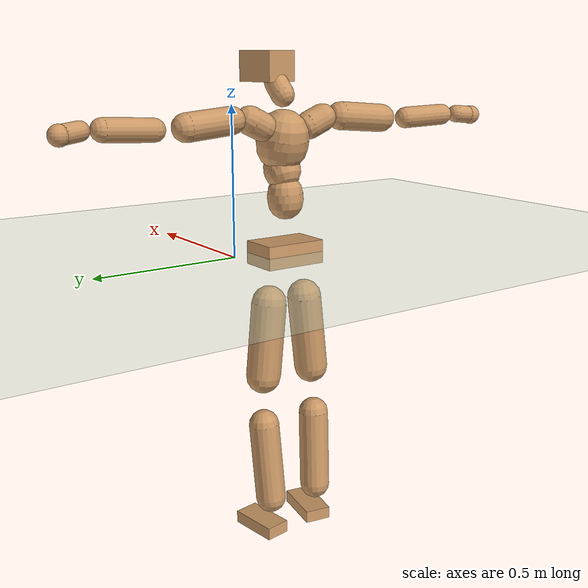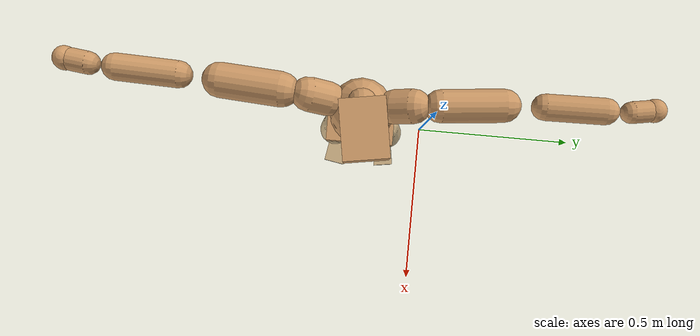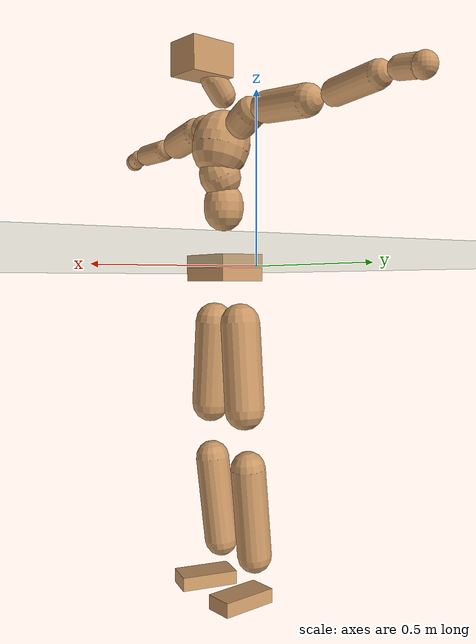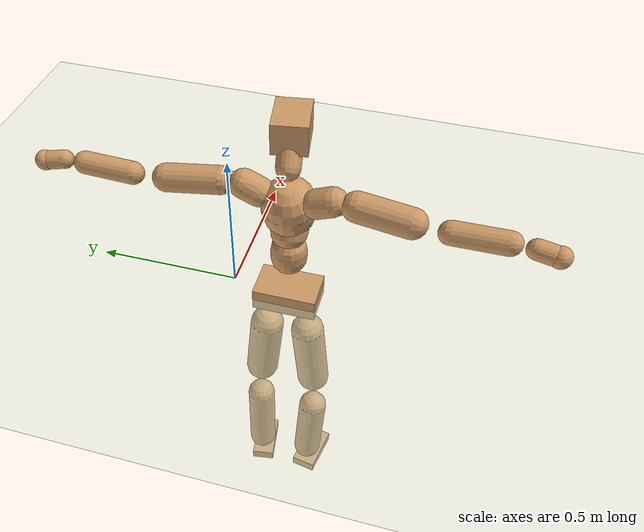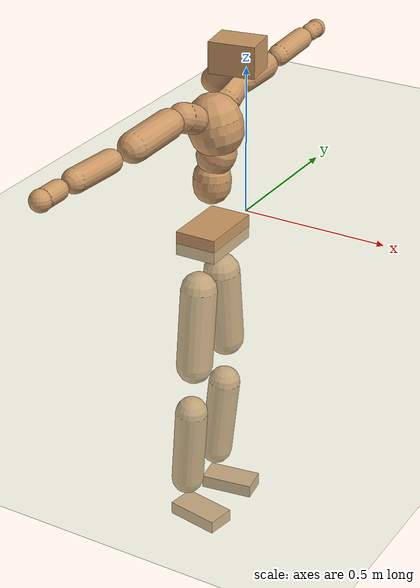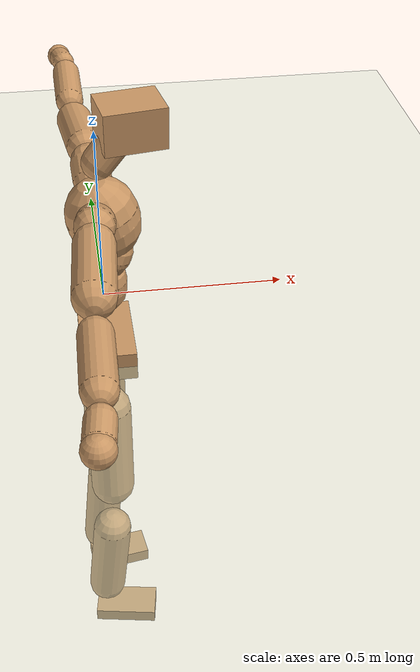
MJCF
<mujoco model="humanoid">
  <compiler coordinate="local" angle="radian"/>
  <default>
    <joint damping="0.0" armature="0.01" stiffness="0.0" limited="true"/>
    <geom conaffinity="1" condim="3" contype="7" margin="0.001" rgba="0.8 0.6 .4 1"/>
  </default>
  <asset>
    <texture type="skybox" builtin="gradient" rgb1=".4 .5 .6" rgb2="0 0 0" width="100" height="100"/>
    <texture builtin="flat" height="1278" mark="cross" markrgb="1 1 1" name="texgeom" random="0.01" rgb1="0.8 0.6 0.4" rgb2="0.8 0.6 0.4" type="cube" width="127"/>
    <texture builtin="checker" height="100" name="texplane" rgb1="0 0 0" rgb2="0.8 0.8 0.8" type="2d" width="100"/>
    <material name="MatPlane" reflectance="0.5" shininess="1" specular="1" texrepeat="60 60" texture="texplane"/>
    <material name="geom" texture="texgeom" texuniform="true"/>
  </asset>
  <worldbody>
    <light cutoff="100" diffuse="1 1 1" dir="-0 0 -1.3" directional="true" exponent="1" pos="0 0 1.3" specular=".1 .1 .1"/>
    <geom conaffinity="1" condim="3" name="floor" pos="0 0 0" rgba="0.8 0.9 0.8 1" size="100 100 .2" type="plane" material="MatPlane"/>
    <body name="Pelvis" pos="0.0006 -0.1985 0.0114">
      <freejoint name="Pelvis"/>
      <geom type="box" contype="1" conaffinity="1" density="500" pos="-0.0079 -0.0000 -0.0135" size="0.0696 0.1108 0.0404" quat="1.0000 0.0000 0.0000 0.0015" name="Pelvis"/>
      <body name="L_Hip" pos="-0.0211 0.0681 -0.0949">
        <joint name="L_Hip_x" type="hinge" pos="0 0 0" axis="1 0 0" stiffness="800" damping="80" armature="0.02" range="-180.0000 180.0000"/>
        <joint name="L_Hip_y" type="hinge" pos="0 0 0" axis="0 1 0" stiffness="800" damping="80" armature="0.02" range="-180.0000 180.0000"/>
        <joint name="L_Hip_z" type="hinge" pos="0 0 0" axis="0 0 1" stiffness="800" damping="80" armature="0.02" range="-180.0000 180.0000"/>
        <geom type="capsule" contype="1" conaffinity="1" density="500" fromto="0.0001 0.0086 -0.0879 0.0004 0.0344 -0.3518" size="0.0608" name="L_Hip"/>
        <body name="L_Knee" pos="0.0005 0.0429 -0.4397">
          <joint name="L_Knee_x" type="hinge" pos="0 0 0" axis="1 0 0" stiffness="800" damping="80" armature="0.02" range="-180.0000 180.0000"/>
          <joint name="L_Knee_y" type="hinge" pos="0 0 0" axis="0 1 0" stiffness="800" damping="80" armature="0.02" range="-180.0000 180.0000"/>
          <joint name="L_Knee_z" type="hinge" pos="0 0 0" axis="0 0 1" stiffness="800" damping="80" armature="0.02" range="-180.0000 180.0000"/>
          <geom type="capsule" contype="1" conaffinity="1" density="500" fromto="-0.0094 -0.0028 -0.0924 -0.0378 -0.0110 -0.3696" size="0.0539" name="L_Knee"/>
          <body name="L_Ankle" pos="-0.0472 -0.0138 -0.4619">
            <joint name="L_Ankle_x" type="hinge" pos="0 0 0" axis="1 0 0" stiffness="800" damping="80" armature="0.02" range="-180.0000 180.0000"/>
            <joint name="L_Ankle_y" type="hinge" pos="0 0 0" axis="0 1 0" stiffness="800" damping="80" armature="0.02" range="-180.0000 180.0000"/>
            <joint name="L_Ankle_z" type="hinge" pos="0 0 0" axis="0 0 1" stiffness="800" damping="80" armature="0.02" range="-180.0000 180.0000"/>
            <geom type="box" contype="1" conaffinity="1" density="500" pos="0.0633 0.0095 -0.0310" size="0.0892 0.0443 0.0223" quat="0.9972 0.0000 0.0000 0.0742" name="L_Ankle"/>
            <body name="L_Toe" pos="0.1266 0.019 -0.0621">
              <joint name="L_Toe_x" type="hinge" pos="0 0 0" axis="1 0 0" stiffness="500" damping="50" armature="0.02" range="-180.0000 180.0000"/>
              <joint name="L_Toe_y" type="hinge" pos="0 0 0" axis="0 1 0" stiffness="500" damping="50" armature="0.02" range="-180.0000 180.0000"/>
              <joint name="L_Toe_z" type="hinge" pos="0 0 0" axis="0 0 1" stiffness="500" damping="50" armature="0.02" range="-180.0000 180.0000"/>
              <geom type="box" contype="1" conaffinity="1" density="500" pos="0.0000 0.0000 0.0304" size="0.0009 0.0022 0.0011" quat="0.9967 0.0000 0.0000 0.0807" name="L_Toe"/>
            </body>
          </body>
        </body>
      </body>
      <body name="R_Hip" pos="-0.016 -0.0651 -0.093">
        <joint name="R_Hip_x" type="hinge" pos="0 0 0" axis="1 0 0" stiffness="800" damping="80" armature="0.02" range="-180.0000 180.0000"/>
        <joint name="R_Hip_y" type="hinge" pos="0 0 0" axis="0 1 0" stiffness="800" damping="80" armature="0.02" range="-180.0000 180.0000"/>
        <joint name="R_Hip_z" type="hinge" pos="0 0 0" axis="0 0 1" stiffness="800" damping="80" armature="0.02" range="-180.0000 180.0000"/>
        <geom type="capsule" contype="1" conaffinity="1" density="500" fromto="-0.0007 -0.0097 -0.0894 -0.0030 -0.0390 -0.3577" size="0.06" name="R_Hip"/>
        <body name="R_Knee" pos="-0.0037 -0.0487 -0.4471">
          <joint name="R_Knee_x" type="hinge" pos="0 0 0" axis="1 0 0" stiffness="800" damping="80" armature="0.02" range="-180.0000 180.0000"/>
          <joint name="R_Knee_y" type="hinge" pos="0 0 0" axis="0 1 0" stiffness="800" damping="80" armature="0.02" range="-180.0000 180.0000"/>
          <joint name="R_Knee_z" type="hinge" pos="0 0 0" axis="0 0 1" stiffness="800" damping="80" armature="0.02" range="-180.0000 180.0000"/>
          <geom type="capsule" contype="1" conaffinity="1" density="500" fromto="-0.0088 0.0037 -0.0921 -0.0353 0.0148 -0.3685" size="0.0542" name="R_Knee"/>
          <body name="R_Ankle" pos="-0.0442 0.0185 -0.4606">
            <joint name="R_Ankle_x" type="hinge" pos="0 0 0" axis="1 0 0" stiffness="800" damping="80" armature="0.02" range="-180.0000 180.0000"/>
            <joint name="R_Ankle_y" type="hinge" pos="0 0 0" axis="0 1 0" stiffness="800" damping="80" armature="0.02" range="-180.0000 180.0000"/>
            <joint name="R_Ankle_z" type="hinge" pos="0 0 0" axis="0 0 1" stiffness="800" damping="80" armature="0.02" range="-180.0000 180.0000"/>
            <geom type="box" contype="1" conaffinity="1" density="500" pos="0.0649 -0.0114 -0.0265" size="0.0911 0.0474 0.0219" quat="0.9963 0.0000 0.0000 -0.0864" name="R_Ankle"/>
            <body name="R_Toe" pos="0.1299 -0.0227 -0.053">
              <joint name="R_Toe_x" type="hinge" pos="0 0 0" axis="1 0 0" stiffness="500" damping="50" armature="0.02" range="-180.0000 180.0000"/>
              <joint name="R_Toe_y" type="hinge" pos="0 0 0" axis="0 1 0" stiffness="500" damping="50" armature="0.02" range="-180.0000 180.0000"/>
              <joint name="R_Toe_z" type="hinge" pos="0 0 0" axis="0 0 1" stiffness="500" damping="50" armature="0.02" range="-180.0000 180.0000"/>
              <geom type="box" contype="1" conaffinity="1" density="500" pos="0.0000 0.0000 0.0288" size="0.0008 0.0023 0.0012" quat="0.9970 0.0000 0.0000 -0.0778" name="R_Toe"/>
            </body>
          </body>
        </body>
      </body>
      <body name="Torso" pos="-0.0104 -0.0031 0.1068">
        <joint name="Torso_x" type="hinge" pos="0 0 0" axis="1 0 0" stiffness="1000" damping="100" armature="0.02" range="-180.0000 180.0000"/>
        <joint name="Torso_y" type="hinge" pos="0 0 0" axis="0 1 0" stiffness="1000" damping="100" armature="0.02" range="-180.0000 180.0000"/>
        <joint name="Torso_z" type="hinge" pos="0 0 0" axis="0 0 1" stiffness="1000" damping="100" armature="0.02" range="-180.0000 180.0000"/>
        <geom type="capsule" contype="1" conaffinity="1" density="500" fromto="0.0021 0.0020 0.0821 0.0014 0.0013 0.0547" size="0.0613" name="Torso"/>
        <body name="Spine" pos="0.0034 0.0034 0.1368">
          <joint name="Spine_x" type="hinge" pos="0 0 0" axis="1 0 0" stiffness="1000" damping="100" armature="0.02" range="-180.0000 180.0000"/>
          <joint name="Spine_y" type="hinge" pos="0 0 0" axis="0 1 0" stiffness="1000" damping="100" armature="0.02" range="-180.0000 180.0000"/>
          <joint name="Spine_z" type="hinge" pos="0 0 0" axis="0 0 1" stiffness="1000" damping="100" armature="0.02" range="-180.0000 180.0000"/>
          <geom type="capsule" contype="1" conaffinity="1" density="500" fromto="0.0157 0.0013 0.0299 0.0105 0.0009 0.0200" size="0.063" name="Spine"/>
          <body name="Chest" pos="0.0262 0.0022 0.0499">
            <joint name="Chest_x" type="hinge" pos="0 0 0" axis="1 0 0" stiffness="1000" damping="100" armature="0.02" range="-180.0000 180.0000"/>
            <joint name="Chest_y" type="hinge" pos="0 0 0" axis="0 1 0" stiffness="1000" damping="100" armature="0.02" range="-180.0000 180.0000"/>
            <joint name="Chest_z" type="hinge" pos="0 0 0" axis="0 0 1" stiffness="1000" damping="100" armature="0.02" range="-180.0000 180.0000"/>
            <geom type="capsule" contype="1" conaffinity="1" density="500" fromto="-0.0209 -0.0005 0.0864 -0.0139 -0.0003 0.0576" size="0.0888" name="Chest"/>
            <body name="Neck" pos="-0.034 -0.0009 0.2066">
              <joint name="Neck_x" type="hinge" pos="0 0 0" axis="1 0 0" stiffness="500" damping="50" armature="0.02" range="-180.0000 180.0000"/>
              <joint name="Neck_y" type="hinge" pos="0 0 0" axis="0 1 0" stiffness="500" damping="50" armature="0.02" range="-180.0000 180.0000"/>
              <joint name="Neck_z" type="hinge" pos="0 0 0" axis="0 0 1" stiffness="500" damping="50" armature="0.02" range="-180.0000 180.0000"/>
              <geom type="capsule" contype="1" conaffinity="1" density="500" fromto="0.0118 0.0016 0.0139 0.0471 0.0063 0.0555" size="0.0395" name="Neck"/>
              <body name="Head" pos="0.0589 0.0078 0.0693">
                <joint name="Head_x" type="hinge" pos="0 0 0" axis="1 0 0" stiffness="500" damping="50" armature="0.02" range="-180.0000 180.0000"/>
                <joint name="Head_y" type="hinge" pos="0 0 0" axis="0 1 0" stiffness="500" damping="50" armature="0.02" range="-180.0000 180.0000"/>
                <joint name="Head_z" type="hinge" pos="0 0 0" axis="0 0 1" stiffness="500" damping="50" armature="0.02" range="-180.0000 180.0000"/>
                <geom type="box" contype="1" conaffinity="1" density="500" pos="0.0305 0.0049 0.0357" size="0.0743 0.0568 0.0504" quat="0.9968 0.0000 0.0000 0.0799" name="Head"/>
              </body>
            </body>
            <body name="L_Thorax" pos="-0.0323 0.0737 0.1141">
              <joint name="L_Thorax_x" type="hinge" pos="0 0 0" axis="1 0 0" stiffness="500" damping="50" armature="0.02" range="-180.0000 180.0000"/>
              <joint name="L_Thorax_y" type="hinge" pos="0 0 0" axis="0 1 0" stiffness="500" damping="50" armature="0.02" range="-180.0000 180.0000"/>
              <joint name="L_Thorax_z" type="hinge" pos="0 0 0" axis="0 0 1" stiffness="500" damping="50" armature="0.02" range="-180.0000 180.0000"/>
              <geom type="capsule" contype="1" conaffinity="1" density="500" fromto="-0.0009 0.0161 0.0075 -0.0035 0.0643 0.0300" size="0.0477" name="L_Thorax"/>
              <body name="L_Shoulder" pos="-0.0043 0.0804 0.0374">
                <joint name="L_Shoulder_x" type="hinge" pos="0 0 0" axis="1 0 0" stiffness="500" damping="50" armature="0.02" range="-720.0000 720.0000"/>
                <joint name="L_Shoulder_y" type="hinge" pos="0 0 0" axis="0 1 0" stiffness="500" damping="50" armature="0.02" range="-720.0000 720.0000"/>
                <joint name="L_Shoulder_z" type="hinge" pos="0 0 0" axis="0 0 1" stiffness="500" damping="50" armature="0.02" range="-720.0000 720.0000"/>
                <geom type="capsule" contype="1" conaffinity="1" density="500" fromto="-0.0059 0.0571 -0.0044 -0.0234 0.2285 -0.0176" size="0.0457" name="L_Shoulder"/>
                <body name="L_Elbow" pos="-0.0293 0.2856 -0.022">
                  <joint name="L_Elbow_x" type="hinge" pos="0 0 0" axis="1 0 0" stiffness="500" damping="50" armature="0.02" range="-720.0000 720.0000"/>
                  <joint name="L_Elbow_y" type="hinge" pos="0 0 0" axis="0 1 0" stiffness="500" damping="50" armature="0.02" range="-720.0000 720.0000"/>
                  <joint name="L_Elbow_z" type="hinge" pos="0 0 0" axis="0 0 1" stiffness="500" damping="50" armature="0.02" range="-720.0000 720.0000"/>
                  <geom type="capsule" contype="1" conaffinity="1" density="500" fromto="-0.0004 0.0536 0.0027 -0.0018 0.2146 0.0107" size="0.0367" name="L_Elbow"/>
                  <body name="L_Wrist" pos="-0.0022 0.2682 0.0133">
                    <joint name="L_Wrist_x" type="hinge" pos="0 0 0" axis="1 0 0" stiffness="300" damping="30" armature="0.02" range="-180.0000 180.0000"/>
                    <joint name="L_Wrist_y" type="hinge" pos="0 0 0" axis="0 1 0" stiffness="300" damping="30" armature="0.02" range="-180.0000 180.0000"/>
                    <joint name="L_Wrist_z" type="hinge" pos="0 0 0" axis="0 0 1" stiffness="300" damping="30" armature="0.02" range="-180.0000 180.0000"/>
                    <geom type="capsule" contype="1" conaffinity="1" density="500" fromto="-0.0028 0.0162 -0.0020 -0.0112 0.0648 -0.0081" size="0.0299" name="L_Wrist"/>
                    <body name="L_Hand" pos="-0.014 0.081 -0.0101">
                      <joint name="L_Hand_x" type="hinge" pos="0 0 0" axis="1 0 0" stiffness="300" damping="30" armature="0.02" range="-180.0000 180.0000"/>
                      <joint name="L_Hand_y" type="hinge" pos="0 0 0" axis="0 1 0" stiffness="300" damping="30" armature="0.02" range="-180.0000 180.0000"/>
                      <joint name="L_Hand_z" type="hinge" pos="0 0 0" axis="0 0 1" stiffness="300" damping="30" armature="0.02" range="-180.0000 180.0000"/>
                      <geom type="sphere" contype="1" conaffinity="1" density="500" size="0.0324" pos="0.0000 0.0000 0.0000" name="L_Hand"/>
                    </body>
                  </body>
                </body>
              </body>
            </body>
            <body name="R_Thorax" pos="-0.0382 -0.0753 0.1112">
              <joint name="R_Thorax_x" type="hinge" pos="0 0 0" axis="1 0 0" stiffness="500" damping="50" armature="0.02" range="-180.0000 180.0000"/>
              <joint name="R_Thorax_y" type="hinge" pos="0 0 0" axis="0 1 0" stiffness="500" damping="50" armature="0.02" range="-180.0000 180.0000"/>
              <joint name="R_Thorax_z" type="hinge" pos="0 0 0" axis="0 0 1" stiffness="500" damping="50" armature="0.02" range="-180.0000 180.0000"/>
              <geom type="capsule" contype="1" conaffinity="1" density="500" fromto="-0.0015 -0.0174 0.0079 -0.0061 -0.0698 0.0317" size="0.0472" name="R_Thorax"/>
              <body name="R_Shoulder" pos="-0.0077 -0.0872 0.0397">
                <joint name="R_Shoulder_x" type="hinge" pos="0 0 0" axis="1 0 0" stiffness="500" damping="50" armature="0.02" range="-720.0000 720.0000"/>
                <joint name="R_Shoulder_y" type="hinge" pos="0 0 0" axis="0 1 0" stiffness="500" damping="50" armature="0.02" range="-720.0000 720.0000"/>
                <joint name="R_Shoulder_z" type="hinge" pos="0 0 0" axis="0 0 1" stiffness="500" damping="50" armature="0.02" range="-720.0000 720.0000"/>
                <geom type="capsule" contype="1" conaffinity="1" density="500" fromto="-0.0043 -0.0563 -0.0044 -0.0170 -0.2253 -0.0178" size="0.0484" name="R_Shoulder"/>
                <body name="R_Elbow" pos="-0.0213 -0.2816 -0.0222">
                  <joint name="R_Elbow_x" type="hinge" pos="0 0 0" axis="1 0 0" stiffness="500" damping="50" armature="0.02" range="-720.0000 720.0000"/>
                  <joint name="R_Elbow_y" type="hinge" pos="0 0 0" axis="0 1 0" stiffness="500" damping="50" armature="0.02" range="-720.0000 720.0000"/>
                  <joint name="R_Elbow_z" type="hinge" pos="0 0 0" axis="0 0 1" stiffness="500" damping="50" armature="0.02" range="-720.0000 720.0000"/>
                  <geom type="capsule" contype="1" conaffinity="1" density="500" fromto="-0.0016 -0.0566 0.0018 -0.0065 -0.2262 0.0071" size="0.0376" name="R_Elbow"/>
                  <body name="R_Wrist" pos="-0.0081 -0.2828 0.0089">
                    <joint name="R_Wrist_x" type="hinge" pos="0 0 0" axis="1 0 0" stiffness="300" damping="30" armature="0.02" range="-180.0000 180.0000"/>
                    <joint name="R_Wrist_y" type="hinge" pos="0 0 0" axis="0 1 0" stiffness="300" damping="30" armature="0.02" range="-180.0000 180.0000"/>
                    <joint name="R_Wrist_z" type="hinge" pos="0 0 0" axis="0 0 1" stiffness="300" damping="30" armature="0.02" range="-180.0000 180.0000"/>
                    <geom type="capsule" contype="1" conaffinity="1" density="500" fromto="-0.0022 -0.0169 -0.0015 -0.0088 -0.0676 -0.0061" size="0.0315" name="R_Wrist"/>
                    <body name="R_Hand" pos="-0.011 -0.0845 -0.0077">
                      <joint name="R_Hand_x" type="hinge" pos="0 0 0" axis="1 0 0" stiffness="300" damping="30" armature="0.02" range="-180.0000 180.0000"/>
                      <joint name="R_Hand_y" type="hinge" pos="0 0 0" axis="0 1 0" stiffness="300" damping="30" armature="0.02" range="-180.0000 180.0000"/>
                      <joint name="R_Hand_z" type="hinge" pos="0 0 0" axis="0 0 1" stiffness="300" damping="30" armature="0.02" range="-180.0000 180.0000"/>
                      <geom type="sphere" contype="1" conaffinity="1" density="500" size="0.0337" pos="0.0000 0.0000 0.0000" name="R_Hand"/>
                    </body>
                  </body>
                </body>
              </body>
            </body>
          </body>
        </body>
      </body>
    </body>
  </worldbody>
  <actuator>
    <motor name="L_Hip_x" joint="L_Hip_x" gear="500"/>
    <motor name="L_Hip_y" joint="L_Hip_y" gear="500"/>
    <motor name="L_Hip_z" joint="L_Hip_z" gear="500"/>
    <motor name="L_Knee_x" joint="L_Knee_x" gear="500"/>
    <motor name="L_Knee_y" joint="L_Knee_y" gear="500"/>
    <motor name="L_Knee_z" joint="L_Knee_z" gear="500"/>
    <motor name="L_Ankle_x" joint="L_Ankle_x" gear="500"/>
    <motor name="L_Ankle_y" joint="L_Ankle_y" gear="500"/>
    <motor name="L_Ankle_z" joint="L_Ankle_z" gear="500"/>
    <motor name="L_Toe_x" joint="L_Toe_x" gear="500"/>
    <motor name="L_Toe_y" joint="L_Toe_y" gear="500"/>
    <motor name="L_Toe_z" joint="L_Toe_z" gear="500"/>
    <motor name="R_Hip_x" joint="R_Hip_x" gear="500"/>
    <motor name="R_Hip_y" joint="R_Hip_y" gear="500"/>
    <motor name="R_Hip_z" joint="R_Hip_z" gear="500"/>
    <motor name="R_Knee_x" joint="R_Knee_x" gear="500"/>
    <motor name="R_Knee_y" joint="R_Knee_y" gear="500"/>
    <motor name="R_Knee_z" joint="R_Knee_z" gear="500"/>
    <motor name="R_Ankle_x" joint="R_Ankle_x" gear="500"/>
    <motor name="R_Ankle_y" joint="R_Ankle_y" gear="500"/>
    <motor name="R_Ankle_z" joint="R_Ankle_z" gear="500"/>
    <motor name="R_Toe_x" joint="R_Toe_x" gear="500"/>
    <motor name="R_Toe_y" joint="R_Toe_y" gear="500"/>
    <motor name="R_Toe_z" joint="R_Toe_z" gear="500"/>
    <motor name="Torso_x" joint="Torso_x" gear="500"/>
    <motor name="Torso_y" joint="Torso_y" gear="500"/>
    <motor name="Torso_z" joint="Torso_z" gear="500"/>
    <motor name="Spine_x" joint="Spine_x" gear="500"/>
    <motor name="Spine_y" joint="Spine_y" gear="500"/>
    <motor name="Spine_z" joint="Spine_z" gear="500"/>
    <motor name="Chest_x" joint="Chest_x" gear="500"/>
    <motor name="Chest_y" joint="Chest_y" gear="500"/>
    <motor name="Chest_z" joint="Chest_z" gear="500"/>
    <motor name="Neck_x" joint="Neck_x" gear="500"/>
    <motor name="Neck_y" joint="Neck_y" gear="500"/>
    <motor name="Neck_z" joint="Neck_z" gear="500"/>
    <motor name="Head_x" joint="Head_x" gear="500"/>
    <motor name="Head_y" joint="Head_y" gear="500"/>
    <motor name="Head_z" joint="Head_z" gear="500"/>
    <motor name="L_Thorax_x" joint="L_Thorax_x" gear="500"/>
    <motor name="L_Thorax_y" joint="L_Thorax_y" gear="500"/>
    <motor name="L_Thorax_z" joint="L_Thorax_z" gear="500"/>
    <motor name="L_Shoulder_x" joint="L_Shoulder_x" gear="500"/>
    <motor name="L_Shoulder_y" joint="L_Shoulder_y" gear="500"/>
    <motor name="L_Shoulder_z" joint="L_Shoulder_z" gear="500"/>
    <motor name="L_Elbow_x" joint="L_Elbow_x" gear="500"/>
    <motor name="L_Elbow_y" joint="L_Elbow_y" gear="500"/>
    <motor name="L_Elbow_z" joint="L_Elbow_z" gear="500"/>
    <motor name="L_Wrist_x" joint="L_Wrist_x" gear="500"/>
    <motor name="L_Wrist_y" joint="L_Wrist_y" gear="500"/>
    <motor name="L_Wrist_z" joint="L_Wrist_z" gear="500"/>
    <motor name="L_Hand_x" joint="L_Hand_x" gear="500"/>
    <motor name="L_Hand_y" joint="L_Hand_y" gear="500"/>
    <motor name="L_Hand_z" joint="L_Hand_z" gear="500"/>
    <motor name="R_Thorax_x" joint="R_Thorax_x" gear="500"/>
    <motor name="R_Thorax_y" joint="R_Thorax_y" gear="500"/>
    <motor name="R_Thorax_z" joint="R_Thorax_z" gear="500"/>
    <motor name="R_Shoulder_x" joint="R_Shoulder_x" gear="500"/>
    <motor name="R_Shoulder_y" joint="R_Shoulder_y" gear="500"/>
    <motor name="R_Shoulder_z" joint="R_Shoulder_z" gear="500"/>
    <motor name="R_Elbow_x" joint="R_Elbow_x" gear="500"/>
    <motor name="R_Elbow_y" joint="R_Elbow_y" gear="500"/>
    <motor name="R_Elbow_z" joint="R_Elbow_z" gear="500"/>
    <motor name="R_Wrist_x" joint="R_Wrist_x" gear="500"/>
    <motor name="R_Wrist_y" joint="R_Wrist_y" gear="500"/>
    <motor name="R_Wrist_z" joint="R_Wrist_z" gear="500"/>
    <motor name="R_Hand_x" joint="R_Hand_x" gear="500"/>
    <motor name="R_Hand_y" joint="R_Hand_y" gear="500"/>
    <motor name="R_Hand_z" joint="R_Hand_z" gear="500"/>
  </actuator>
  <contact>
    <exclude body1="Torso" body2="Chest"/>
    <exclude body1="Head" body2="Chest"/>
    <exclude body1="R_Knee" body2="R_Toe"/>
    <exclude body1="R_Knee" body2="L_Ankle"/>
    <exclude body1="R_Knee" body2="L_Toe"/>
    <exclude body1="L_Knee" body2="L_Toe"/>
    <exclude body1="L_Knee" body2="R_Ankle"/>
    <exclude body1="L_Knee" body2="R_Toe"/>
    <exclude body1="L_Shoulder" body2="Chest"/>
    <exclude body1="R_Shoulder" body2="Chest"/>
  </contact>
  <sensor/>
  <size njmax="700" nconmax="700"/>
</mujoco>
